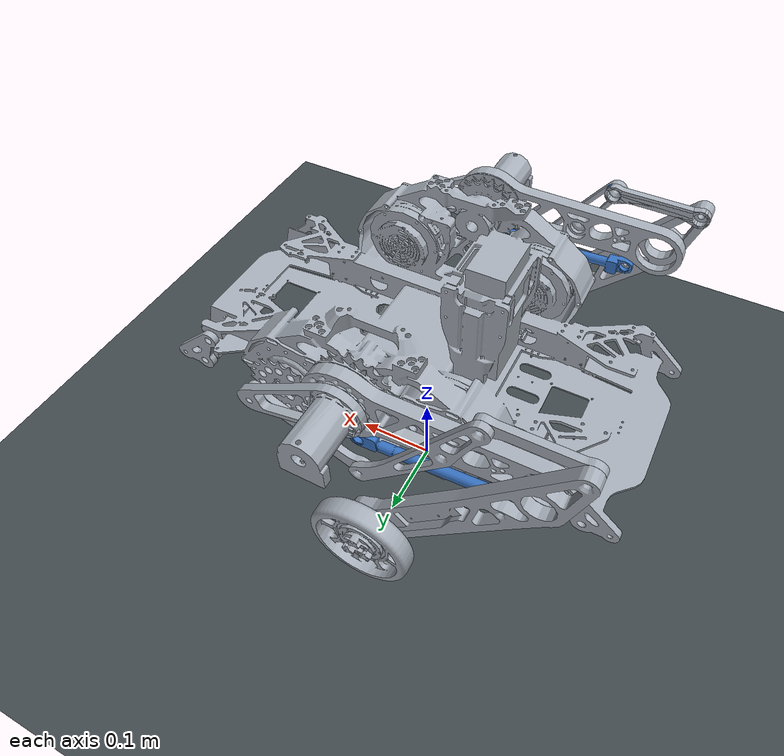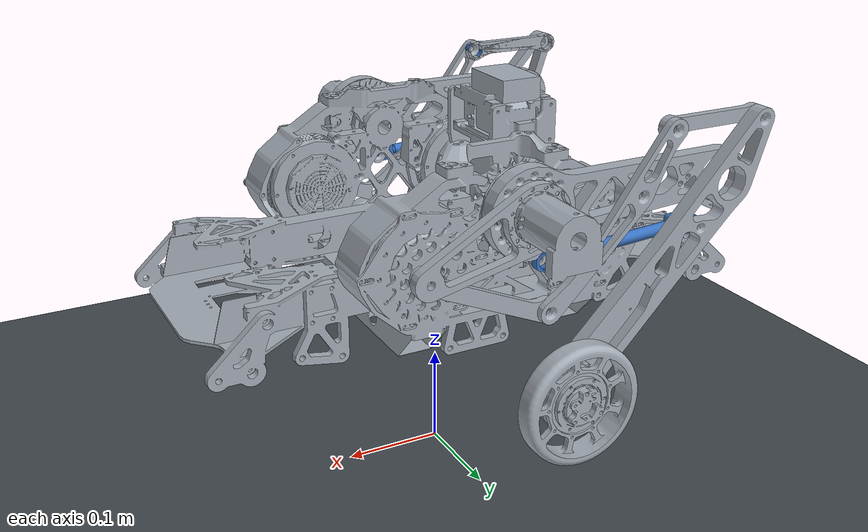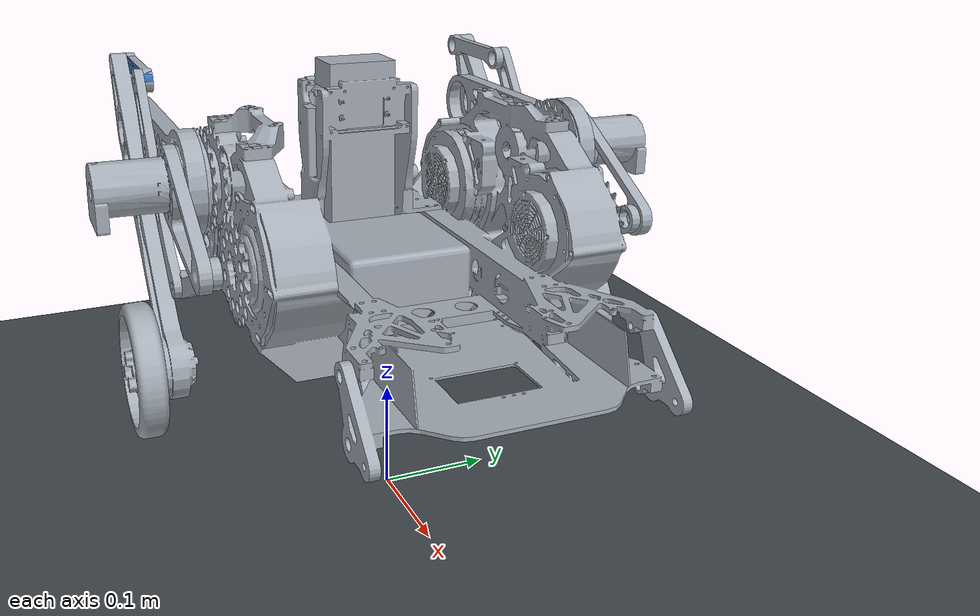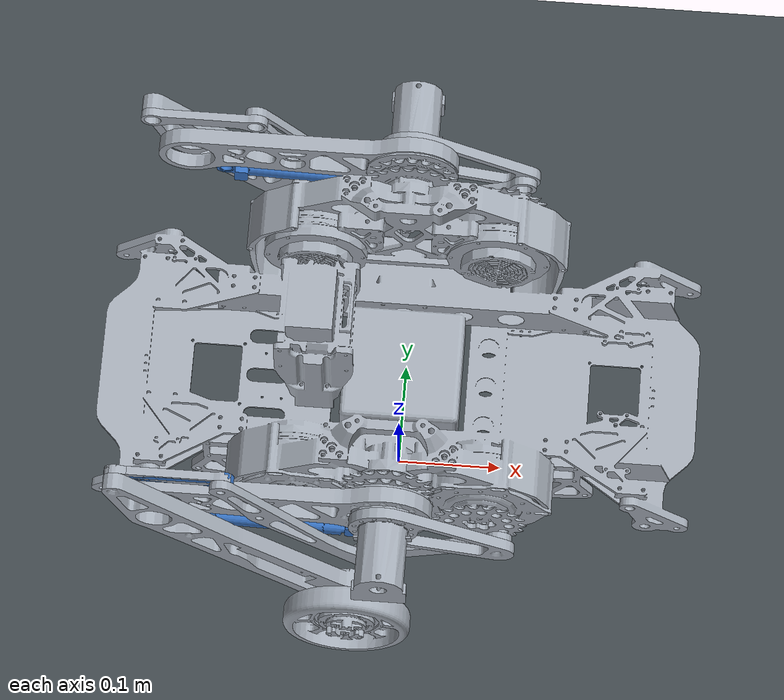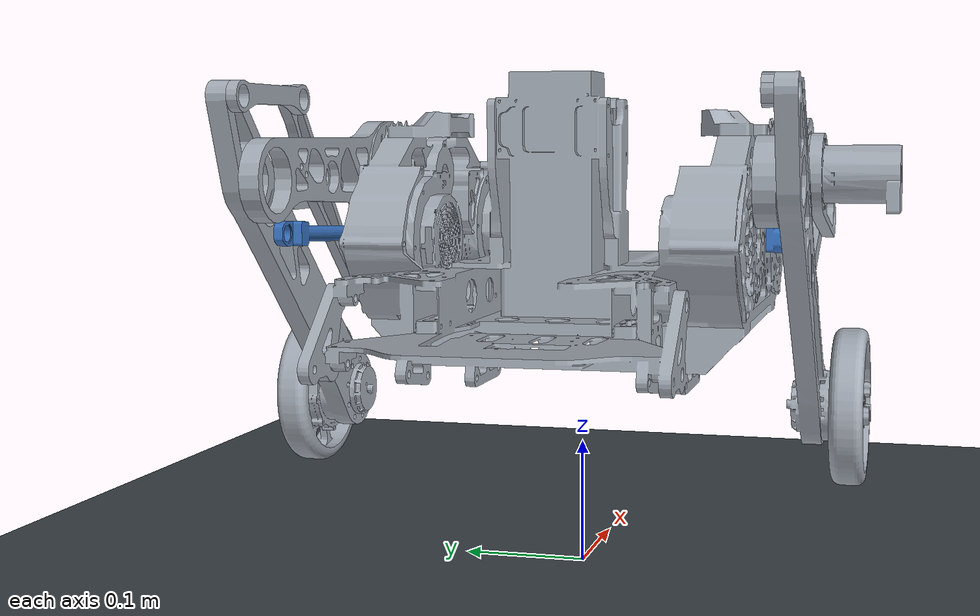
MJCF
<?xml version='1.0' encoding='utf-8'?>
<mujoco model="v5_gas_spring_closedchain_research">
  <compiler angle="radian" autolimits="true" inertiafromgeom="false" fusestatic="false" />
  <option timestep="0.0005" gravity="0 0 -9.81" integrator="implicitfast" solver="Newton" iterations="100" tolerance="1e-10" jacobian="dense">
    <flag energy="enable" />
  </option>
  <default>
    <joint damping="0.002" armature="0" solreflimit="0.002 1" solimplimit="0.99 0.999 0.001" />
    <geom friction="0.5 0.005 0.0001" solref="0.004 1" solimp="0.95 0.99 0.001" />
  </default>
  <asset>
    <mesh name="base_link_visual" file="meshes/base_link.stl" />
    <mesh name="base_link_collision_000" file="collisions/base_link_000.obj" />
    <mesh name="base_link_collision_001" file="collisions/base_link_001.obj" />
    <mesh name="base_link_collision_002" file="collisions/base_link_002.obj" />
    <mesh name="base_link_collision_003" file="collisions/base_link_003.obj" />
    <mesh name="base_link_collision_004" file="collisions/base_link_004.obj" />
    <mesh name="base_link_collision_005" file="collisions/base_link_005.obj" />
    <mesh name="base_link_collision_006" file="collisions/base_link_006.obj" />
    <mesh name="base_link_collision_007" file="collisions/base_link_014.obj" />
    <mesh name="L_link1_visual" file="meshes/L_link1.stl" />
    <mesh name="L_link1_collision_000" file="collisions/L_link1_000.obj" />
    <mesh name="L_link2_visual" file="meshes/L_link2.stl" />
    <mesh name="L_link2_collision_000" file="collisions/L_link2_000.obj" />
    <mesh name="L_link3_visual" file="meshes/L_link3.stl" />
    <mesh name="LLL_link2_visual" file="meshes/LLL_link2.stl" />
    <mesh name="LLL_link2_collision_000" file="collisions/LLL_link2_000.obj" />
    <mesh name="LLL_link2_collision_001" file="collisions/LLL_link2_001.obj" />
    <mesh name="LLL_link1_visual" file="meshes/LLL_link1.stl" />
    <mesh name="LLL_link1_collision_000" file="collisions/LLL_link1_000.obj" />
    <mesh name="LLL_link1_collision_001" file="collisions/LLL_link1_001.obj" />
    <mesh name="R_link1_visual" file="meshes/R_link1.stl" />
    <mesh name="R_link1_collision_000" file="collisions/R_link1_000.obj" />
    <mesh name="R_link2_visual" file="meshes/R_link2.stl" />
    <mesh name="R_link2_collision_000" file="collisions/R_link2_000.obj" />
    <mesh name="R_link3_visual" file="meshes/R_link3.stl" />
    <mesh name="RRR_link2_visual" file="meshes/RRR_link2.stl" />
    <mesh name="RRR_link2_collision_000" file="collisions/RRR_link2_000.obj" />
    <mesh name="RRR_link2_collision_001" file="collisions/RRR_link2_001.obj" />
    <mesh name="RRR_link1_visual" file="meshes/RRR_link1.stl" />
    <mesh name="RRR_link1_collision_000" file="collisions/RRR_link1_000.obj" />
    <mesh name="RRR_link1_collision_001" file="collisions/RRR_link1_001.obj" />
    <mesh name="LL_link1_visual" file="meshes/LL_link1.stl" />
    <mesh name="LL_link1_collision_000" file="collisions/LL_link1_000.obj" />
    <mesh name="LL_link2_visual" file="meshes/LL_link2.stl" />
    <mesh name="LL_link2_collision_000" file="collisions/LL_link2_000.obj" />
    <mesh name="LL_link3_visual" file="meshes/LL_link3.stl" />
    <mesh name="LL_link3_collision_000" file="collisions/LL_link3_000.obj" />
    <mesh name="LL_link4_visual" file="meshes/LL_link4.stl" />
    <mesh name="LL_link4_collision_000" file="collisions/LL_link4_000.obj" />
    <mesh name="RR_link1_visual" file="meshes/RR_link1.stl" />
    <mesh name="RR_link1_collision_000" file="collisions/RR_link1_000.obj" />
    <mesh name="RR_link2_visual" file="meshes/RR_link2.stl" />
    <mesh name="RR_link2_collision_000" file="collisions/RR_link2_000.obj" />
    <mesh name="RR_link3_visual" file="meshes/RR_link3.stl" />
    <mesh name="RR_link3_collision_000" file="collisions/RR_link3_000.obj" />
    <mesh name="RR_link4_visual" file="meshes/RR_link4.stl" />
    <mesh name="RR_link4_collision_000" file="collisions/RR_link4_000.obj" />
  </asset>
  <worldbody>
    <geom name="ground" type="plane" size="3 3 0.1" rgba="0.25 0.28 0.3 1" contype="1" conaffinity="2" />
    <body name="base_link" pos="0 0 0.32000000000000001" quat="1 0 0 0">
      <freejoint name="floating_base" />
      <inertial pos="-0.0091751000000000003 0.00028750999999999999 -0.049915000000000001" mass="11.619999999999999" fullinertia="0.17799999999999999 0.126 0.25525999999999999 -0.00026400000000000002 -0.0041200000000000004 -0.00048999999999999998" />
      <geom name="base_link_visual" type="mesh" mesh="base_link_visual" pos="0 0 0" quat="0.70710678118654746 0 0 0.70710678118654746" rgba="0.65000000000000002 0.68000000000000005 0.71999999999999997 1" contype="0" conaffinity="0" group="2" density="0" />
      <geom name="base_link_collision_000" type="mesh" pos="0 0 0" quat="0.70710678118654746 0 0 0.70710678118654746" contype="2" conaffinity="1" group="3" rgba="0.5 0.5 0.5 0" density="0" mesh="base_link_collision_000" />
      <geom name="base_link_collision_001" type="mesh" pos="0 0 0" quat="0.70710678118654746 0 0 0.70710678118654746" contype="2" conaffinity="1" group="3" rgba="0.5 0.5 0.5 0" density="0" mesh="base_link_collision_001" />
      <geom name="base_link_collision_002" type="mesh" pos="0 0 0" quat="0.70710678118654746 0 0 0.70710678118654746" contype="2" conaffinity="1" group="3" rgba="0.5 0.5 0.5 0" density="0" mesh="base_link_collision_002" />
      <geom name="base_link_collision_003" type="mesh" pos="0 0 0" quat="0.70710678118654746 0 0 0.70710678118654746" contype="2" conaffinity="1" group="3" rgba="0.5 0.5 0.5 0" density="0" mesh="base_link_collision_003" />
      <geom name="base_link_collision_004" type="mesh" pos="0 0 0" quat="0.70710678118654746 0 0 0.70710678118654746" contype="2" conaffinity="1" group="3" rgba="0.5 0.5 0.5 0" density="0" mesh="base_link_collision_004" />
      <geom name="base_link_collision_005" type="mesh" pos="0 0 0" quat="0.70710678118654746 0 0 0.70710678118654746" contype="2" conaffinity="1" group="3" rgba="0.5 0.5 0.5 0" density="0" mesh="base_link_collision_005" />
      <geom name="base_link_collision_006" type="mesh" pos="0 0 0" quat="0.70710678118654746 0 0 0.70710678118654746" contype="2" conaffinity="1" group="3" rgba="0.5 0.5 0.5 0" density="0" mesh="base_link_collision_006" />
      <geom name="base_link_collision_007" type="mesh" pos="0 0 0" quat="0.70710678118654746 0 0 0.70710678118654746" contype="2" conaffinity="1" group="3" rgba="0.5 0.5 0.5 0" density="0" mesh="base_link_collision_007" />
      <body name="L_link1" pos="0 0.18379999999999999 -0.00083697000000000003" quat="-1.2956813451597711e-06 -1.3016600111501985e-06 0.70873255073411567 0.70547726506708996">
        <joint name="L_joint1" type="hinge" axis="5.4545533671387925e-17 -2.688821387764051e-17 -0.99999999999999978" limited="false" />
        <inertial pos="0.095034999999999994 0.0033671 -0.0074866999999999998" mass="0.161" fullinertia="7.7999999999999999e-05 0.00094499999999999998 0.001 2.1999999999999999e-05 0 0" />
        <geom name="L_link1_visual" type="mesh" mesh="L_link1_visual" pos="0 0 0" quat="1 0 0 0" rgba="0.65000000000000002 0.68000000000000005 0.71999999999999997 1" contype="0" conaffinity="0" group="2" density="0" />
        <geom name="L_link1_collision_000" type="mesh" pos="0 0 0" quat="1 0 0 0" contype="2" conaffinity="1" group="3" rgba="0.5 0.5 0.5 0" density="0" mesh="L_link1_collision_000" />
        <site name="L_rocker_P_0" pos="0.1134 0 0" size="0.001" rgba="1 0 0 0" />
        <site name="L_spring_upper_mount_0" pos="0.01559 -0.048558999999999998 -0.002" size="0.001" rgba="1 0 0 0" />
        <body name="L_link2" pos="0.20999999999999999 0 0" quat="-0.3821726949867929 0 0 0.92409092150422723">
          <joint name="L_joint2" type="hinge" axis="1.9949319973733282e-17 -5.7245874707234634e-17 0.99999999999999978" limited="true" range="-0.17342741539177786 0.6119707480056704" />
          <inertial pos="0.15962999999999999 8.3417000000000004e-05 0.011927" mass="0.45000000000000001" fullinertia="0.00016699999999999999 0.0048999999999999998 0.00496 8.3999999999999995e-05 0.00019100000000000001 0" />
          <geom name="L_link2_visual" type="mesh" mesh="L_link2_visual" pos="0 0 0" quat="1 0 0 0" rgba="0.65000000000000002 0.68000000000000005 0.71999999999999997 1" contype="0" conaffinity="0" group="2" density="0" />
          <geom name="L_link2_collision_000" type="mesh" pos="0 0 0" quat="1 0 0 0" contype="2" conaffinity="1" group="3" rgba="0.5 0.5 0.5 0" density="0" mesh="L_link2_collision_000" />
          <site name="L_upper_E_0" pos="-0.064777199999999993 -0.017114899999999999 0" size="0.001" rgba="1 0 0 0" />
          <body name="L_link3" pos="0.25 0 0.014999999999999999" quat="-0.70710548251123628 0 0 0.70710807985947355">
            <joint name="L_joint3" type="hinge" axis="5.6812193838240432e-17 1.951563910473908e-17 0.99999999999999967" limited="false" />
            <inertial pos="8.3267000000000005e-17 -1.3878e-17 0.020472000000000001" mass="0.20000000000000001" fullinertia="0.00029599999999999998 0.00029599999999999998 0.00057499999999999999 0 0 0" />
            <geom name="L_link3_visual" type="mesh" mesh="L_link3_visual" pos="0 0 0" quat="1 0 0 0" rgba="0.65000000000000002 0.68000000000000005 0.71999999999999997 1" contype="0" conaffinity="0" group="2" density="0" />
            <geom name="L_link3_collision_000" type="cylinder" pos="0 0 0.020350000821053982" quat="1 0 0 0" contype="2" conaffinity="1" group="3" rgba="0.5 0.5 0.5 0" density="0" size="0.059999999999999998 0.012500000186264515" />
          </body>
          <body name="LLL_link2" pos="0.050754000000000001 0.0050000000000000001 -0.002" quat="0.93453007627868312 0 0 -0.35588416167421483">
            <joint name="LLL_joint2" type="hinge" axis="-5.2909066017292616e-17 3.0357660829594124e-17 -0.99999999999999978" limited="false" />
            <inertial pos="0.056620520572056576 2.2693258023521745e-07 -0.0035140562214167879" mass="0.057000000000000002" fullinertia="1.5991564534500119e-06 9.9801268550012145e-05 9.9989074404210814e-05 -6.5559504869399489e-10 1.3480209180084853e-07 6.5860470486463153e-11" />
            <geom name="LLL_link2_visual" type="mesh" mesh="LLL_link2_visual" pos="0 0 0" quat="1 0 0 0" rgba="0.22 0.45000000000000001 0.76000000000000001 1" contype="0" conaffinity="0" group="2" density="0" />
            <geom name="LLL_link2_collision_000" type="mesh" pos="0 0 0" quat="1 0 0 0" contype="2" conaffinity="1" group="3" rgba="0.5 0.5 0.5 0" density="0" mesh="LLL_link2_collision_000" />
            <geom name="LLL_link2_collision_001" type="mesh" pos="0 0 0" quat="1 0 0 0" contype="2" conaffinity="1" group="3" rgba="0.5 0.5 0.5 0" density="0" mesh="LLL_link2_collision_001" />
            <body name="LLL_link1" pos="0.16227281984491271 -4.5561519895764846e-06 -2.7755575615628914e-17" quat="1.2826794896206736e-05 -1.2419303732751975e-20 -1.5197184622962391e-19 0.99999999991773669">
              <joint name="L_spring_slide" type="slide" axis="-0.99999999999706313 2.4235212888676361e-06 -1.8973538018496328e-17" limited="true" range="-0.005470234560387616 0.07452976551411819" />
              <inertial pos="0.02835545917506696 1.406221048862276e-07 -0.0038034952940326746" mass="0.035000000000000003" fullinertia="7.9993185345635836e-07 2.892666759204024e-05 2.9443064093221869e-05 1.3953592908346791e-10 -2.0985851611499816e-07 -2.9746249560320088e-12" />
              <geom name="LLL_link1_visual" type="mesh" mesh="LLL_link1_visual" pos="0 0 0" quat="1 0 0 0" rgba="0.22 0.45000000000000001 0.76000000000000001 1" contype="0" conaffinity="0" group="2" density="0" />
              <geom name="LLL_link1_collision_000" type="mesh" pos="0 0 0" quat="1 0 0 0" contype="2" conaffinity="1" group="3" rgba="0.5 0.5 0.5 0" density="0" mesh="LLL_link1_collision_000" />
              <geom name="LLL_link1_collision_001" type="mesh" pos="0 0 0" quat="1 0 0 0" contype="2" conaffinity="1" group="3" rgba="0.5 0.5 0.5 0" density="0" mesh="LLL_link1_collision_001" />
              <site name="L_spring_upper_mount_1" pos="1.7347234759768071e-18 6.9388939039072284e-18 -2.7755575615628914e-17" size="0.001" rgba="1 0 0 0" />
            </body>
          </body>
        </body>
      </body>
      <body name="R_link1" pos="0 -0.18279999999999999 0.00083241000000000001" quat="-1.2956813451597711e-06 -1.3016600111501985e-06 0.70873255073411567 0.70547726506708996">
        <joint name="R_joint1" type="hinge" axis="-5.4545533671387925e-17 2.688821387764051e-17 0.99999999999999978" limited="false" />
        <inertial pos="0.095034999999999994 0.0033671 0.0074866999999999998" mass="0.161" fullinertia="7.7999999999999999e-05 0.00094499999999999998 0.001 2.1999999999999999e-05 0 0" />
        <geom name="R_link1_visual" type="mesh" mesh="R_link1_visual" pos="0 0 0" quat="1 0 0 0" rgba="0.65000000000000002 0.68000000000000005 0.71999999999999997 1" contype="0" conaffinity="0" group="2" density="0" />
        <geom name="R_link1_collision_000" type="mesh" pos="0 0 0" quat="1 0 0 0" contype="2" conaffinity="1" group="3" rgba="0.5 0.5 0.5 0" density="0" mesh="R_link1_collision_000" />
        <site name="R_rocker_P_0" pos="0.1134 0 0" size="0.001" rgba="1 0 0 0" />
        <site name="R_spring_upper_mount_0" pos="0.01559 -0.048558999999999998 0.002" size="0.001" rgba="1 0 0 0" />
        <body name="R_link2" pos="0.20999999999999999 0 0" quat="-0.3821726949867929 0 0 0.92409092150422723">
          <joint name="R_jonit2" type="hinge" axis="-1.9949319973733282e-17 5.7245874707234634e-17 -0.99999999999999978" limited="true" range="-0.6119707480056704 0.17342741539177786" />
          <inertial pos="0.15962999999999999 8.3411999999999994e-05 -0.011927" mass="0.45000000000000001" fullinertia="0.00016699999999999999 0.0048999999999999998 0.00496 8.3999999999999995e-05 -0.00019100000000000001 0" />
          <geom name="R_link2_visual" type="mesh" mesh="R_link2_visual" pos="0 0 0" quat="1 0 0 0" rgba="0.65000000000000002 0.68000000000000005 0.71999999999999997 1" contype="0" conaffinity="0" group="2" density="0" />
          <geom name="R_link2_collision_000" type="mesh" pos="0 0 0" quat="1 0 0 0" contype="2" conaffinity="1" group="3" rgba="0.5 0.5 0.5 0" density="0" mesh="R_link2_collision_000" />
          <site name="R_upper_E_0" pos="-0.064777199999999993 -0.017114899999999999 0" size="0.001" rgba="1 0 0 0" />
          <body name="R_link3" pos="0.25 0 -0.014999999999999999" quat="3.6732051033465744e-06 0 0 0.99999999999325384">
            <joint name="R_joint3" type="hinge" axis="2.0383000842727483e-17 -5.7245874707234634e-17 -0.99999999999999967" limited="false" />
            <inertial pos="1.3878e-17 1.3878e-17 -0.020472000000000001" mass="0.20000000000000001" fullinertia="0.00029599999999999998 0.00029599999999999998 0.00057499999999999999 0 0 0" />
            <geom name="R_link3_visual" type="mesh" mesh="R_link3_visual" pos="0 0 0" quat="1 0 0 0" rgba="0.65000000000000002 0.68000000000000005 0.71999999999999997 1" contype="0" conaffinity="0" group="2" density="0" />
            <geom name="R_link3_collision_000" type="cylinder" pos="0 0 -0.020350000821053982" quat="1 0 0 0" contype="2" conaffinity="1" group="3" rgba="0.5 0.5 0.5 0" density="0" size="0.059999999999999998 0.012500000186264515" />
          </body>
          <body name="RRR_link2" pos="0.050754000000000001 0.0050000000000000001 0.002" quat="0.93453007627868312 0 0 -0.35588416167421483">
            <joint name="RRR_joint2" type="hinge" axis="5.2909066017292616e-17 -3.0357660829594124e-17 0.99999999999999978" limited="false" />
            <inertial pos="0.056620520328993576 -2.2696438507176417e-07 0.0035132596609730943" mass="0.057000000000000002" fullinertia="1.5991576895396881e-06 9.9801269640069308e-05 9.9989074269384934e-05 6.5562562912370638e-10 -1.3250116425351663e-07 -6.6218420976259676e-11" />
            <geom name="RRR_link2_visual" type="mesh" mesh="RRR_link2_visual" pos="0 0 0" quat="1 0 0 0" rgba="0.22 0.45000000000000001 0.76000000000000001 1" contype="0" conaffinity="0" group="2" density="0" />
            <geom name="RRR_link2_collision_000" type="mesh" pos="0 0 0" quat="1 0 0 0" contype="2" conaffinity="1" group="3" rgba="0.5 0.5 0.5 0" density="0" mesh="RRR_link2_collision_000" />
            <geom name="RRR_link2_collision_001" type="mesh" pos="0 0 0" quat="1 0 0 0" contype="2" conaffinity="1" group="3" rgba="0.5 0.5 0.5 0" density="0" mesh="RRR_link2_collision_001" />
            <body name="RRR_link1" pos="0.16227281984491274 -4.5561519895764846e-06 0" quat="1.2826794896206736e-05 -1.2419303732751975e-20 -1.5197184622962391e-19 0.99999999991773669">
              <joint name="R_spring_slide" type="slide" axis="-0.99999999999706313 2.4235212888676361e-06 1.52059354691092e-16" limited="true" range="-0.005470234560387616 0.07452976551411819" />
              <inertial pos="0.028355459227729272 -1.4062152907218347e-07 0.0038034952912981189" mass="0.035000000000000003" fullinertia="7.9993185254717395e-07 2.8926667622708545e-05 2.9443064123707198e-05 -1.3953645546406646e-10 2.0985851848334156e-07 -2.974992645711264e-12" />
              <geom name="RRR_link1_visual" type="mesh" mesh="RRR_link1_visual" pos="0 0 0" quat="1 0 0 0" rgba="0.22 0.45000000000000001 0.76000000000000001 1" contype="0" conaffinity="0" group="2" density="0" />
              <geom name="RRR_link1_collision_000" type="mesh" pos="0 0 0" quat="1 0 0 0" contype="2" conaffinity="1" group="3" rgba="0.5 0.5 0.5 0" density="0" mesh="RRR_link1_collision_000" />
              <geom name="RRR_link1_collision_001" type="mesh" pos="0 0 0" quat="1 0 0 0" contype="2" conaffinity="1" group="3" rgba="0.5 0.5 0.5 0" density="0" mesh="RRR_link1_collision_001" />
              <site name="R_spring_upper_mount_1" pos="0 0 -2.7755575615628914e-17" size="0.001" rgba="1 0 0 0" />
            </body>
          </body>
        </body>
      </body>
      <body name="LL_link1" pos="0 0.19500000000000001 -0.00088796999999999997" quat="-0.69346747088861271 0.69664134366792685 -0.13029564906575417 -0.12967940833621322">
        <joint name="LL_joint1" type="hinge" axis="2.1453274206567011e-05 -4.2014280965815658e-05 -0.99999999888727853" limited="false" />
        <inertial pos="0.051943000000000003 8.3267000000000005e-17 -0.0053947999999999999" mass="0.041000000000000002" fullinertia="1.4e-05 9.3999999999999994e-05 0.000107 0 0 0" />
        <geom name="LL_link1_visual" type="mesh" mesh="LL_link1_visual" pos="0 0 0" quat="1 0 0 0" rgba="0.65000000000000002 0.68000000000000005 0.71999999999999997 1" contype="0" conaffinity="0" group="2" density="0" />
        <geom name="LL_link1_collision_000" type="mesh" pos="0 0 0" quat="1 0 0 0" contype="2" conaffinity="1" group="3" rgba="0.5 0.5 0.5 0" density="0" mesh="LL_link1_collision_000" />
        <body name="LL_link2" pos="0.1134 0 0" quat="0.3821726949867929 0 0 0.92409092150422723">
          <joint name="LL_joint2" type="hinge" axis="4.4862238410745469e-05 -1.4588431856581152e-05 0.99999999888727853" limited="false" />
          <inertial pos="0.067499996652668037 -0.0031961587851391722 -0.0139999995008111" mass="0.084000000000000005" fullinertia="3.0771153150561235e-06 0.00015746971688430342 0.0001596508323228603 -4.1325227058119182e-12 0 9.1669234592203659e-22" />
          <geom name="LL_link2_visual" type="mesh" mesh="LL_link2_visual" pos="0 0 0" quat="1 0 0 0" rgba="0.65000000000000002 0.68000000000000005 0.71999999999999997 1" contype="0" conaffinity="0" group="2" density="0" />
          <geom name="LL_link2_collision_000" type="mesh" pos="0 0 0" quat="1 0 0 0" contype="2" conaffinity="1" group="3" rgba="0.5 0.5 0.5 0" density="0" mesh="LL_link2_collision_000" />
          <body name="LL_link3" pos="0.13500000000000001 0 0" quat="0.8008398797587063 0 0 0.59887852440045031">
            <joint name="LL_joint3" type="hinge" axis="-1.3113307406821713e-06 -4.7156369569181268e-05 0.99999999888727853" limited="false" />
            <inertial pos="0.098147791664811038 -0.0047064786233428175 -0.0072379210378418039" mass="0.041000000000000002" fullinertia="2.8505634833000649e-06 0.00017220774774025197 0.0001746259460162144 -8.9224475841000254e-07 2.1025499081516398e-08 1.3456798280155446e-09" />
            <geom name="LL_link3_visual" type="mesh" mesh="LL_link3_visual" pos="0 0 0" quat="1 0 0 0" rgba="0.65000000000000002 0.68000000000000005 0.71999999999999997 1" contype="0" conaffinity="0" group="2" density="0" />
            <geom name="LL_link3_collision_000" type="mesh" pos="0 0 0" quat="1 0 0 0" contype="2" conaffinity="1" group="3" rgba="0.5 0.5 0.5 0" density="0" mesh="LL_link3_collision_000" />
            <site name="L_rocker_P_1" pos="0.13450731469228955 -0.011522671655003258 -0.011204106698462946" size="0.001" rgba="1 0 0 0" />
            <body name="LL_link4" pos="0.20050999999999999 0 0" quat="0.90692692443949507 0 0 -0.42128797007120722">
              <joint name="LL_link4" type="hinge" axis="3.5188914979058498e-05 -3.1419469152950408e-05 0.99999999888727853" limited="false" />
              <inertial pos="0.048482936672656712 0.0014755924337494393 -0.015200000256299974" mass="0.064000000000000001" fullinertia="1.9659272577506865e-06 6.301888043746245e-05 6.430214080475087e-05 9.9764987945870786e-08 0 -5.7006750222901835e-22" />
              <geom name="LL_link4_visual" type="mesh" mesh="LL_link4_visual" pos="0 0 0" quat="1 0 0 0" rgba="0.65000000000000002 0.68000000000000005 0.71999999999999997 1" contype="0" conaffinity="0" group="2" density="0" />
              <geom name="LL_link4_collision_000" type="mesh" pos="0 0 0" quat="1 0 0 0" contype="2" conaffinity="1" group="3" rgba="0.5 0.5 0.5 0" density="0" mesh="LL_link4_collision_000" />
              <site name="L_upper_E_1" pos="0.096599605642192693 3.5211409529778415e-07 -0.011206876003999555" size="0.001" rgba="1 0 0 0" />
            </body>
          </body>
        </body>
      </body>
      <body name="RR_link1" pos="0 -0.19400000000000001 0.00088342" quat="-0.69346747088861271 0.69664134366792685 -0.13029564906575417 -0.12967940833621322">
        <joint name="RR_joint1" type="hinge" axis="-2.1453274206567011e-05 4.2014280965815658e-05 0.99999999888727853" limited="false" />
        <inertial pos="0.051943000000000003 3.4693999999999997e-17 0.0046052000000000003" mass="0.041000000000000002" fullinertia="1.4e-05 9.3999999999999994e-05 0.000107 0 0 0" />
        <geom name="RR_link1_visual" type="mesh" mesh="RR_link1_visual" pos="0 0 0" quat="1 0 0 0" rgba="0.65000000000000002 0.68000000000000005 0.71999999999999997 1" contype="0" conaffinity="0" group="2" density="0" />
        <geom name="RR_link1_collision_000" type="mesh" pos="0 0 0" quat="1 0 0 0" contype="2" conaffinity="1" group="3" rgba="0.5 0.5 0.5 0" density="0" mesh="RR_link1_collision_000" />
        <body name="RR_link2" pos="0.1134 0 0" quat="0.3821726949867929 0 0 0.92409092150422723">
          <joint name="RR_joint2" type="hinge" axis="4.4862238410745469e-05 -1.4588431856581152e-05 0.99999999888727853" limited="false" />
          <inertial pos="0.067499996652668037 -0.0031961587851391717 0.014000000432133675" mass="0.83999999999999997" fullinertia="3.0771155236723894e-05 0.0015746971709291978 0.001596508323228604 -4.1325227079942779e-11 -1.4667074119808041e-19 -9.1669213248800255e-21" />
          <geom name="RR_link2_visual" type="mesh" mesh="RR_link2_visual" pos="0 0 0" quat="1 0 0 0" rgba="0.65000000000000002 0.68000000000000005 0.71999999999999997 1" contype="0" conaffinity="0" group="2" density="0" />
          <geom name="RR_link2_collision_000" type="mesh" pos="0 0 0" quat="1 0 0 0" contype="2" conaffinity="1" group="3" rgba="0.5 0.5 0.5 0" density="0" mesh="RR_link2_collision_000" />
          <body name="RR_link3" pos="0.13500000000000001 0 0" quat="0.8008398797587063 0 0 0.59887852440045031">
            <joint name="RR_joint3" type="hinge" axis="-1.3113307406821713e-06 -4.7156369569181268e-05 0.99999999888727853" limited="false" />
            <inertial pos="0.098147791679093044 -0.0047064786224289149 0.0071620788303409693" mass="0.041000000000000002" fullinertia="2.8505635201238321e-06 0.00017220774790624715 0.00017462594614348989 -8.9224475417682283e-07 2.1025499543377649e-08 1.3456798575946806e-09" />
            <geom name="RR_link3_visual" type="mesh" mesh="RR_link3_visual" pos="0 0 0" quat="1 0 0 0" rgba="0.65000000000000002 0.68000000000000005 0.71999999999999997 1" contype="0" conaffinity="0" group="2" density="0" />
            <geom name="RR_link3_collision_000" type="mesh" pos="0 0 0" quat="1 0 0 0" contype="2" conaffinity="1" group="3" rgba="0.5 0.5 0.5 0" density="0" mesh="RR_link3_collision_000" />
            <site name="R_rocker_P_1" pos="0.13450728531817641 -0.011523727968633601 0.011196125525286593" size="0.001" rgba="1 0 0 0" />
            <body name="RR_link4" pos="0.20050999999999999 0 0" quat="0.90692692443949507 0 0 -0.42128797007120722">
              <joint name="RR_joint4" type="hinge" axis="3.5188914979058498e-05 -3.1419469152950408e-05 0.99999999888727853" limited="false" />
              <inertial pos="0.048482936672656712 0.0014755924337494393 0.015200000256299978" mass="0.064000000000000001" fullinertia="1.9659272577506793e-06 6.301888043746245e-05 6.430214080475087e-05 9.9764987945871924e-08 2.7363240106992882e-20 5.7006750222901835e-22" />
              <geom name="RR_link4_visual" type="mesh" mesh="RR_link4_visual" pos="0 0 0" quat="1 0 0 0" rgba="0.65000000000000002 0.68000000000000005 0.71999999999999997 1" contype="0" conaffinity="0" group="2" density="0" />
              <geom name="RR_link4_collision_000" type="mesh" pos="0 0 0" quat="1 0 0 0" contype="2" conaffinity="1" group="3" rgba="0.5 0.5 0.5 0" density="0" mesh="RR_link4_collision_000" />
              <site name="R_upper_E_1" pos="0.096600393882060764 -3.5168931086099198e-07 0.011193356219749956" size="0.001" rgba="1 0 0 0" />
            </body>
          </body>
        </body>
      </body>
    </body>
  </worldbody>
  <equality>
    <connect name="L_rocker_P" site1="L_rocker_P_0" site2="L_rocker_P_1" solref="0.002 1" solimp="0.99 0.999 0.001" />
    <connect name="L_upper_E" site1="L_upper_E_0" site2="L_upper_E_1" solref="0.002 1" solimp="0.99 0.999 0.001" />
    <connect name="L_spring_upper_mount" site1="L_spring_upper_mount_0" site2="L_spring_upper_mount_1" solref="0.002 1" solimp="0.99 0.999 0.001" />
    <connect name="R_rocker_P" site1="R_rocker_P_0" site2="R_rocker_P_1" solref="0.002 1" solimp="0.99 0.999 0.001" />
    <connect name="R_upper_E" site1="R_upper_E_0" site2="R_upper_E_1" solref="0.002 1" solimp="0.99 0.999 0.001" />
    <connect name="R_spring_upper_mount" site1="R_spring_upper_mount_0" site2="R_spring_upper_mount_1" solref="0.002 1" solimp="0.99 0.999 0.001" />
  </equality>
  <actuator>
    <motor name="L_joint1_equivalent_torque" joint="L_joint1" gear="1" />
    <motor name="LL_joint1_equivalent_torque" joint="LL_joint1" gear="1" />
    <motor name="L_joint3_equivalent_torque" joint="L_joint3" gear="1" />
    <motor name="R_joint1_equivalent_torque" joint="R_joint1" gear="1" />
    <motor name="RR_joint1_equivalent_torque" joint="RR_joint1" gear="1" />
    <motor name="R_joint3_equivalent_torque" joint="R_joint3" gear="1" />
    <motor name="L_spring_slide_gas_force" joint="L_spring_slide" gear="1" />
    <motor name="R_spring_slide_gas_force" joint="R_spring_slide" gear="1" />
  </actuator>
  <keyframe>
    <key name="nominal" qpos="0 0 0.32000000000000001 1 0 0 0 0.41999999999999998 0.40000000000000002 0 0.45841092750666423 0.017636819036901237 -0.41999999999999998 -0.40000000000000002 0 -0.45841092750666412 0.017636819036901213 -0.13742282595254576 -0.40001078809972224 0.24267537896855504 -0.40003949998743793 0.13741557625658019 -0.39999979021819521 0.24267163078299317 -0.40003949998743671" />
  </keyframe>
</mujoco>
